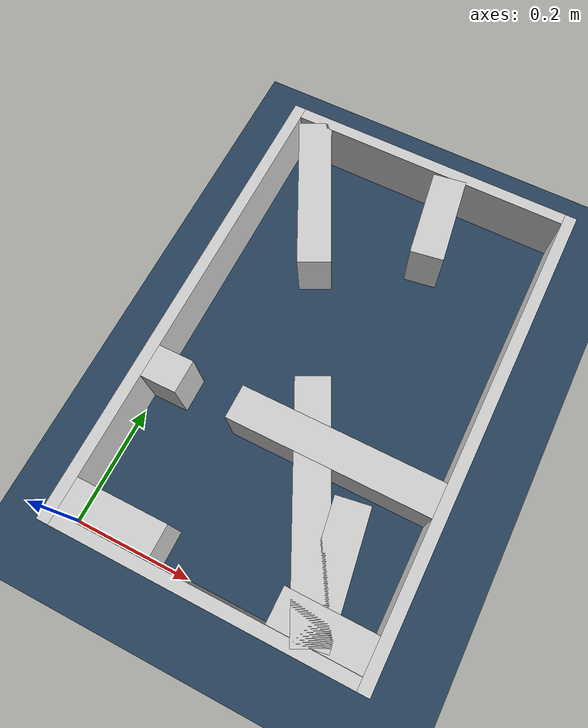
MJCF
<?xml version="1.0" ?>
<mujoco model="generated_real_template">
  <compiler angle="degree"/>
  <option timestep="0.002" integrator="implicitfast" iterations="100" cone="elliptic"/>
  <default>
    <geom density="1"/>
  </default>
  <asset>
    <texture builtin="gradient" height="3072" rgb1="0.3 0.5 0.7" rgb2="0 0 0" type="skybox" width="512"/>
    <texture builtin="checker" height="300" mark="edge" markrgb="0.8 0.8 0.8" name="groundplane" rgb1="0.2 0.3 0.4" rgb2="0.1 0.2 0.3" type="2d" width="300"/>
    <material name="groundplane" reflectance="0.2" texrepeat="5 5" texture="groundplane" texuniform="true"/>
  </asset>
  <worldbody>
    <light dir="0 0 -1" directional="true" pos="0 0 1.5"/>
    <geom name="floor" type="plane" condim="4" friction="0.5 0.005 0.001" material="groundplane" size="0 0 0.05"/>
    <body name="walls">
      <geom name="wall_boundary_left" type="box" condim="4" friction="1.0 0.005 0.0001" rgba="0.8 0.8 0.8 1" pos="-0.010000 0.387500 0.050000" euler="0 0 0.000000" size="0.010000 0.407500 0.050000"/>
      <geom name="wall_boundary_right" type="box" condim="4" friction="1.0 0.005 0.0001" rgba="0.8 0.8 0.8 1" pos="0.500000 0.387500 0.050000" euler="0 0 0.000000" size="0.010000 0.407500 0.050000"/>
      <geom name="wall_boundary_bottom" type="box" condim="4" friction="1.0 0.005 0.0001" rgba="0.8 0.8 0.8 1" pos="0.245000 -0.010000 0.050000" euler="0 0 0.000000" size="0.245000 0.010000 0.050000"/>
      <geom name="wall_boundary_top" type="box" condim="4" friction="1.0 0.005 0.0001" rgba="0.8 0.8 0.8 1" pos="0.245000 0.785000 0.050000" euler="0 0 0.000000" size="0.245000 0.010000 0.050000"/>
      <geom name="wall_inner_1_1" type="box" condim="4" friction="1.0 0.005 0.0001" rgba="0.8 0.8 0.8 1" pos="0.030699 0.260833 0.050000" euler="0 0 0.000000" size="0.030699 0.028500 0.050000"/>
      <geom name="wall_inner_1_2" type="box" condim="4" friction="1.0 0.005 0.0001" rgba="0.8 0.8 0.8 1" pos="0.319649 0.260833 0.050000" euler="0 0 0.000000" size="0.170351 0.028500 0.050000"/>
      <geom name="wall_inner_2_1" type="box" condim="4" friction="1.0 0.005 0.0001" rgba="0.8 0.8 0.8 1" pos="0.090392 0.651051 0.050000" euler="0 0 -63.736009" size="0.138218 0.028500 0.050000"/>
      <geom name="wall_inner_2_2" type="box" condim="4" friction="1.0 0.005 0.0001" rgba="0.8 0.8 0.8 1" pos="0.325237 0.175125 0.050000" euler="0 0 -63.736009" size="0.195286 0.028500 0.050000"/>
      <geom name="wall_inner_3_1" type="box" condim="4" friction="1.0 0.005 0.0001" rgba="0.8 0.8 0.8 1" pos="0.076855 0.028797 0.050000" euler="0 0 0.000000" size="0.076855 0.028500 0.050000"/>
      <geom name="wall_inner_3_2" type="box" condim="4" friction="1.0 0.005 0.0001" rgba="0.8 0.8 0.8 1" pos="0.415991 0.028797 0.050000" euler="0 0 0.000000" size="0.074009 0.028500 0.050000"/>
      <geom name="wall_inner_4_1" type="box" condim="4" friction="1.0 0.005 0.0001" rgba="0.8 0.8 0.8 1" pos="0.299807 0.697518 0.050000" euler="0 0 -81.041903" size="0.078439 0.028500 0.050000"/>
      <geom name="wall_inner_4_2" type="box" condim="4" friction="1.0 0.005 0.0001" rgba="0.8 0.8 0.8 1" pos="0.393521 0.103014 0.050000" euler="0 0 -81.041903" size="0.104286 0.028500 0.050000"/>
    </body>
  </worldbody>
</mujoco>
